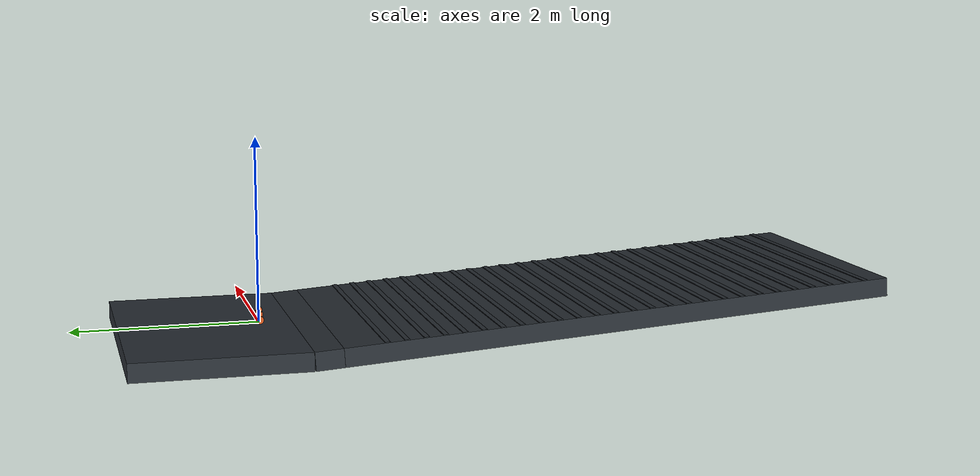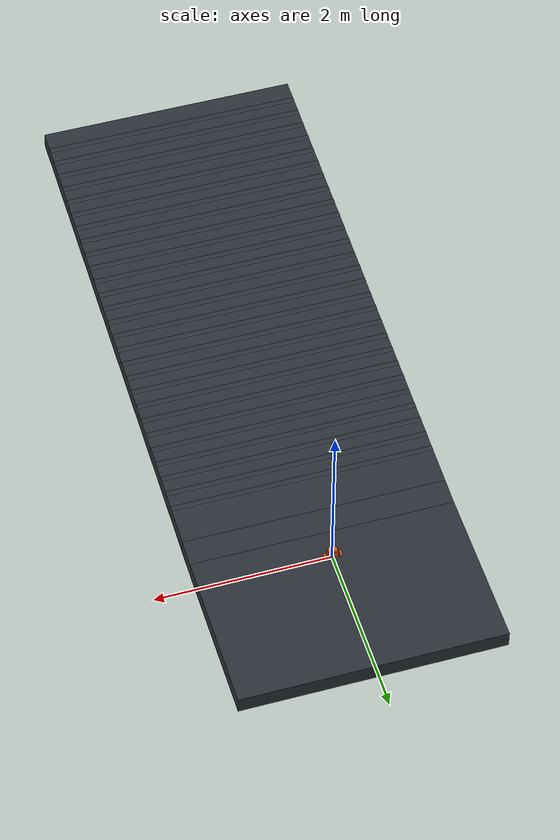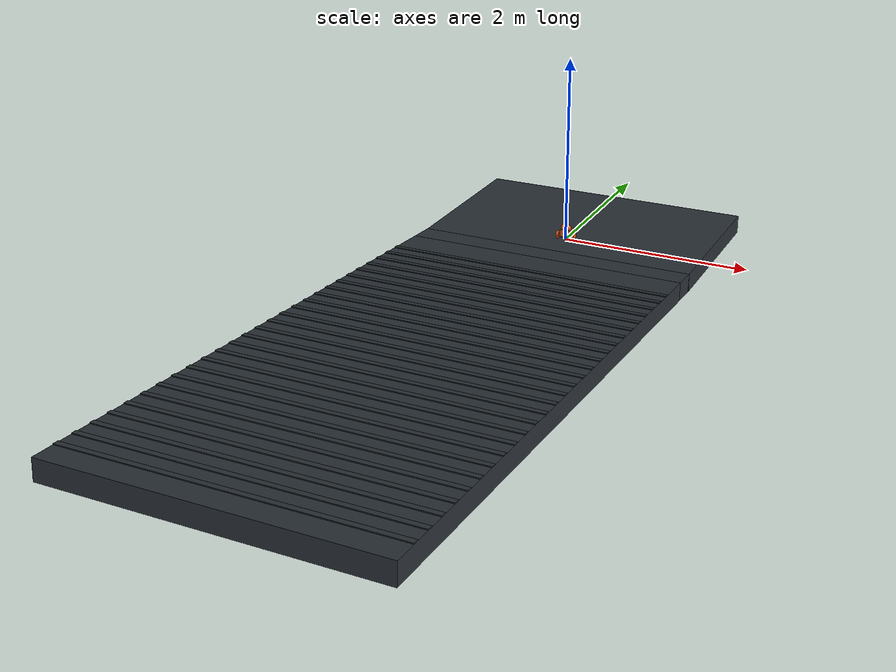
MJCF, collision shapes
<mujoco model="Stage4B rtrain_011_p04p0">
  <compiler angle="radian" meshdir="../../../../assets/upstream_local" />
  <option timestep="0.001" integrator="implicitfast" gravity="0 0 -9.81" />
  <statistic center="0 0 0.05" extent="0.28" />
  <default>
    <default class="visual">
      <geom contype="0" conaffinity="0" group="2" />
    </default>
    <default class="collision">
      <geom group="3" rgba="0.85 0.35 0.12 0.25" solref="0.005 1" solimp="0.9 0.95 0.001" />
    </default>
  </default>
  <asset>
    <texture name="ground_tex" type="2d" builtin="checker" rgb1="0.22 0.25 0.28" rgb2="0.12 0.14 0.16" width="256" height="256" />
    <material name="ground_mat" texture="ground_tex" texrepeat="4 4" reflectance="0.15" />
    <mesh name="main_frame_mesh" file="main_frame.stl" scale="0.001 0.001 0.001" />
    <mesh name="wheel_base_mesh" file="wheel_base.stl" scale="0.001 0.001 0.001" />
    <mesh name="cover_mesh" file="cover.stl" scale="0.001 0.001 0.001" />
    <mesh name="motor_left_mesh" file="motor_left.stl" scale="0.001 0.001 0.001" />
    <mesh name="motor_right_mesh" file="motor_right.stl" scale="0.001 0.001 0.001" />
    <mesh name="mc33926_mesh" file="mc33926.stl" scale="0.001 0.001 0.001" />
    <mesh name="wheel_mesh" file="wheel.stl" scale="0.001 0.001 0.001" />
    <mesh name="adapter_left_mesh" file="adapter_left.stl" scale="0.001 0.001 0.001" />
    <mesh name="adapter_right_mesh" file="adapter_right.stl" scale="0.001 0.001 0.001" />
  </asset>
  <worldbody>
    <light pos="0 -0.5 0.8" dir="0 0.6 -1" diffuse="0.8 0.8 0.8" />
    <geom name="terrain_flat" type="box" pos="0 0.575 -0.1" size="1.5 0.925 0.1" material="ground_mat" friction="0.87710086 0.005 0.0001" condim="3" />
    <geom name="terrain_transition" type="box" pos="0 -0.506610254913 -0.0892929339644" euler="-0.0698131700798 0 0" size="1.5 0.15 0.1" material="ground_mat" friction="0.87710086 0.005 0.0001" condim="3" />
    <geom name="terrain_constant_grade" type="box" pos="0 -3.64893701323 0.13043995833" euler="-0.0698131700798 0 0" size="1.5 3 0.1" material="ground_mat" friction="0.87710086 0.005 0.0001" condim="3" />
    <geom name="terrain_rough_00" type="box" pos="0 -1.09786647035 0.0567014725422" euler="-0.0698131700798 0 0" size="1.5 0.0271425468595 0.00439482280155" material="ground_mat" friction="0.87710086 0.005 0.0001" condim="3" />
    <geom name="terrain_rough_01" type="box" pos="0 -1.30095799943 0.0709030157033" euler="-0.0698131700798 0 0" size="1.5 0.0271425468595 0.00439482280155" material="ground_mat" friction="0.87710086 0.005 0.0001" condim="3" />
    <geom name="terrain_rough_02" type="box" pos="0 -1.50404952851 0.0851045588644" euler="-0.0698131700798 0 0" size="1.5 0.0271425468595 0.00439482280155" material="ground_mat" friction="0.87710086 0.005 0.0001" condim="3" />
    <geom name="terrain_rough_03" type="box" pos="0 -1.70714105759 0.0993061020255" euler="-0.0698131700798 0 0" size="1.5 0.0271425468595 0.00439482280155" material="ground_mat" friction="0.87710086 0.005 0.0001" condim="3" />
    <geom name="terrain_rough_04" type="box" pos="0 -1.91023258666 0.113507645187" euler="-0.0698131700798 0 0" size="1.5 0.0271425468595 0.00439482280155" material="ground_mat" friction="0.87710086 0.005 0.0001" condim="3" />
    <geom name="terrain_rough_05" type="box" pos="0 -2.11332411574 0.127709188348" euler="-0.0698131700798 0 0" size="1.5 0.0271425468595 0.00439482280155" material="ground_mat" friction="0.87710086 0.005 0.0001" condim="3" />
    <geom name="terrain_rough_06" type="box" pos="0 -2.31641564482 0.141910731509" euler="-0.0698131700798 0 0" size="1.5 0.0271425468595 0.00439482280155" material="ground_mat" friction="0.87710086 0.005 0.0001" condim="3" />
    <geom name="terrain_rough_07" type="box" pos="0 -2.5195071739 0.15611227467" euler="-0.0698131700798 0 0" size="1.5 0.0271425468595 0.00439482280155" material="ground_mat" friction="0.87710086 0.005 0.0001" condim="3" />
    <geom name="terrain_rough_08" type="box" pos="0 -2.72259870297 0.170313817831" euler="-0.0698131700798 0 0" size="1.5 0.0271425468595 0.00439482280155" material="ground_mat" friction="0.87710086 0.005 0.0001" condim="3" />
    <geom name="terrain_rough_09" type="box" pos="0 -2.92569023205 0.184515360992" euler="-0.0698131700798 0 0" size="1.5 0.0271425468595 0.00439482280155" material="ground_mat" friction="0.87710086 0.005 0.0001" condim="3" />
    <geom name="terrain_rough_10" type="box" pos="0 -3.12878176113 0.198716904153" euler="-0.0698131700798 0 0" size="1.5 0.0271425468595 0.00439482280155" material="ground_mat" friction="0.87710086 0.005 0.0001" condim="3" />
    <geom name="terrain_rough_11" type="box" pos="0 -3.3318732902 0.212918447314" euler="-0.0698131700798 0 0" size="1.5 0.0271425468595 0.00439482280155" material="ground_mat" friction="0.87710086 0.005 0.0001" condim="3" />
    <geom name="terrain_rough_12" type="box" pos="0 -3.53496481928 0.227119990476" euler="-0.0698131700798 0 0" size="1.5 0.0271425468595 0.00439482280155" material="ground_mat" friction="0.87710086 0.005 0.0001" condim="3" />
    <geom name="terrain_rough_13" type="box" pos="0 -3.73805634836 0.241321533637" euler="-0.0698131700798 0 0" size="1.5 0.0271425468595 0.00439482280155" material="ground_mat" friction="0.87710086 0.005 0.0001" condim="3" />
    <geom name="terrain_rough_14" type="box" pos="0 -3.94114787744 0.255523076798" euler="-0.0698131700798 0 0" size="1.5 0.0271425468595 0.00439482280155" material="ground_mat" friction="0.87710086 0.005 0.0001" condim="3" />
    <geom name="terrain_rough_15" type="box" pos="0 -4.14423940651 0.269724619959" euler="-0.0698131700798 0 0" size="1.5 0.0271425468595 0.00439482280155" material="ground_mat" friction="0.87710086 0.005 0.0001" condim="3" />
    <geom name="terrain_rough_16" type="box" pos="0 -4.34733093559 0.28392616312" euler="-0.0698131700798 0 0" size="1.5 0.0271425468595 0.00439482280155" material="ground_mat" friction="0.87710086 0.005 0.0001" condim="3" />
    <geom name="terrain_rough_17" type="box" pos="0 -4.55042246467 0.298127706281" euler="-0.0698131700798 0 0" size="1.5 0.0271425468595 0.00439482280155" material="ground_mat" friction="0.87710086 0.005 0.0001" condim="3" />
    <geom name="terrain_rough_18" type="box" pos="0 -4.75351399375 0.312329249442" euler="-0.0698131700798 0 0" size="1.5 0.0271425468595 0.00439482280155" material="ground_mat" friction="0.87710086 0.005 0.0001" condim="3" />
    <geom name="terrain_rough_19" type="box" pos="0 -4.95660552282 0.326530792603" euler="-0.0698131700798 0 0" size="1.5 0.0271425468595 0.00439482280155" material="ground_mat" friction="0.87710086 0.005 0.0001" condim="3" />
    <geom name="terrain_rough_20" type="box" pos="0 -5.1596970519 0.340732335764" euler="-0.0698131700798 0 0" size="1.5 0.0271425468595 0.00439482280155" material="ground_mat" friction="0.87710086 0.005 0.0001" condim="3" />
    <geom name="terrain_rough_21" type="box" pos="0 -5.36278858098 0.354933878926" euler="-0.0698131700798 0 0" size="1.5 0.0271425468595 0.00439482280155" material="ground_mat" friction="0.87710086 0.005 0.0001" condim="3" />
    <geom name="terrain_rough_22" type="box" pos="0 -5.56588011006 0.369135422087" euler="-0.0698131700798 0 0" size="1.5 0.0271425468595 0.00439482280155" material="ground_mat" friction="0.87710086 0.005 0.0001" condim="3" />
    <geom name="terrain_rough_23" type="box" pos="0 -5.76897163913 0.383336965248" euler="-0.0698131700798 0 0" size="1.5 0.0271425468595 0.00439482280155" material="ground_mat" friction="0.87710086 0.005 0.0001" condim="3" />
    <geom name="terrain_rough_24" type="box" pos="0 -5.97206316821 0.397538508409" euler="-0.0698131700798 0 0" size="1.5 0.0271425468595 0.00439482280155" material="ground_mat" friction="0.87710086 0.005 0.0001" condim="3" />
    <geom name="terrain_rough_25" type="box" pos="0 -6.17515469729 0.41174005157" euler="-0.0698131700798 0 0" size="1.5 0.0271425468595 0.00439482280155" material="ground_mat" friction="0.87710086 0.005 0.0001" condim="3" />
    <geom name="terrain_rough_26" type="box" pos="0 -6.37824622637 0.425941594731" euler="-0.0698131700798 0 0" size="1.5 0.0271425468595 0.00439482280155" material="ground_mat" friction="0.87710086 0.005 0.0001" condim="3" />
    <body name="chassis" pos="0 0 0.043">
      <freejoint name="root" />
      <inertial pos="0.0001592717873 -0.001394466535 0.03368627387" mass="0.8173706489" fullinertia="0.0009508052638 0.001636345835 0.0009938057434 -1.163464906e-07 -4.840496598e-06 3.454944565e-05" />
      <geom name="main_frame_visual" class="visual" type="mesh" mesh="main_frame_mesh" rgba="0.12 0.42 0.72 1" />
      <geom name="wheel_base_visual" class="visual" type="mesh" mesh="wheel_base_mesh" rgba="0.95 0.50 0.10 1" />
      <geom name="cover_visual" class="visual" type="mesh" mesh="cover_mesh" rgba="0.18 0.72 0.32 0.72" />
      <geom name="motor_left_visual" class="visual" type="mesh" mesh="motor_left_mesh" rgba="0.45 0.47 0.50 1" />
      <geom name="motor_right_visual" class="visual" type="mesh" mesh="motor_right_mesh" rgba="0.45 0.47 0.50 1" />
      <geom name="mc33926_visual" class="visual" type="mesh" mesh="mc33926_mesh" rgba="0.08 0.36 0.18 1" />
      <geom name="battery_1_visual" class="visual" type="box" pos="0 -0.012 0.038" size="0.035 0.007 0.025" rgba="0.15 0.25 0.75 1" />
      <geom name="battery_2_visual" class="visual" type="box" pos="0 0.012 0.038" size="0.035 0.007 0.025" rgba="0.15 0.25 0.75 1" />
      <geom name="electronics_lump_visual" class="visual" type="box" pos="0 -0.024 0.067" size="0.035 0.006 0.0425" rgba="0.10 0.42 0.20 0.65" />
      <geom name="wheel_base_collision" class="collision" type="box" pos="0 0.0005 0.0042" size="0.074 0.0201 0.0198" />
      <geom name="lower_chassis_collision" class="collision" type="box" pos="0.001 -0.0015 0.038" size="0.0595 0.0325 0.038" />
      <geom name="upper_chassis_collision" class="collision" type="capsule" fromto="-0.024 -0.0015 0.096 0.026 -0.0015 0.096" size="0.033" />
      <site name="imu_site" type="box" pos="0 0 0.020" quat="1 0 0 0" size="0.004 0.003 0.001" rgba="1 0.15 0.05 1" />
      <body name="left_wheel" pos="-0.0885 0 0">
        <joint name="left_wheel_hinge" type="hinge" axis="1 0 0" damping="0.002" frictionloss="0.002" />
        <inertial pos="0.001407549168 -2.310217342e-08 4.024972882e-05" mass="0.1051" fullinertia="8.559060347e-05 4.760138372e-05 4.763051958e-05 2.677568832e-11 -3.525425309e-08 -1.463149106e-11" />
        <geom name="left_wheel_visual" class="visual" type="mesh" mesh="wheel_mesh" rgba="0.04 0.05 0.06 1" />
        <geom name="left_adapter_visual" class="visual" type="mesh" mesh="adapter_left_mesh" rgba="0.12 0.48 0.82 1" />
        <geom name="left_wheel_collision" class="collision" type="cylinder" size="0.042 0.012" quat="0.7071067812 0 0.7071067812 0" friction="0.87710086 0.005 0.0001" />
      </body>
      <body name="right_wheel" pos="0.0885 0 0">
        <joint name="right_wheel_hinge" type="hinge" axis="1 0 0" damping="0.002" frictionloss="0.002" />
        <inertial pos="-0.001407437868 -2.310217342e-08 -4.019113045e-05" mass="0.1051" fullinertia="8.559060397e-05 4.760141714e-05 4.763055251e-05 -2.601653908e-11 -3.526339188e-08 1.57007511e-11" />
        <geom name="right_wheel_visual" class="visual" type="mesh" mesh="wheel_mesh" rgba="0.04 0.05 0.06 1" />
        <geom name="right_adapter_visual" class="visual" type="mesh" mesh="adapter_right_mesh" rgba="0.12 0.48 0.82 1" />
        <geom name="right_wheel_collision" class="collision" type="cylinder" size="0.042 0.012" quat="0.7071067812 0 0.7071067812 0" friction="0.87710086 0.005 0.0001" />
      </body>
    </body>
  </worldbody>
  <actuator>
    <motor name="left_wheel_torque" joint="left_wheel_hinge" gear="1" ctrllimited="true" ctrlrange="-0.63 0.63" forcelimited="true" forcerange="-0.63 0.63" />
    <motor name="right_wheel_torque" joint="right_wheel_hinge" gear="1" ctrllimited="true" ctrlrange="-0.63 0.63" forcelimited="true" forcerange="-0.63 0.63" />
  </actuator>
  <sensor>
    <accelerometer name="imu_accelerometer" site="imu_site" />
    <gyro name="imu_gyro" site="imu_site" />
    <jointpos name="left_wheel_angle" joint="left_wheel_hinge" />
    <jointpos name="right_wheel_angle" joint="right_wheel_hinge" />
  </sensor>
  <keyframe>
    <key name="upright" qpos="0 0 0.043 1 0 0 0 0 0" />
  </keyframe>
</mujoco>
